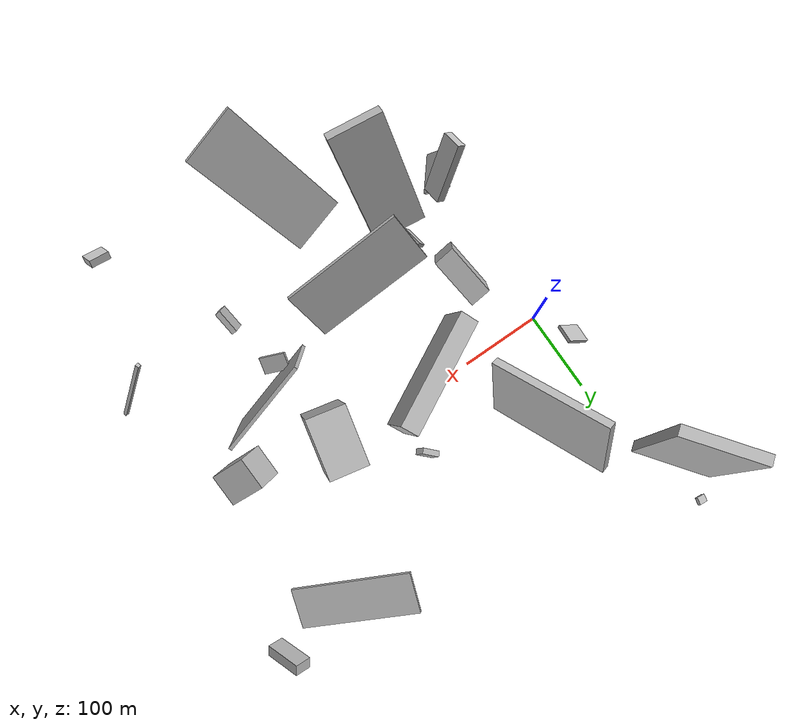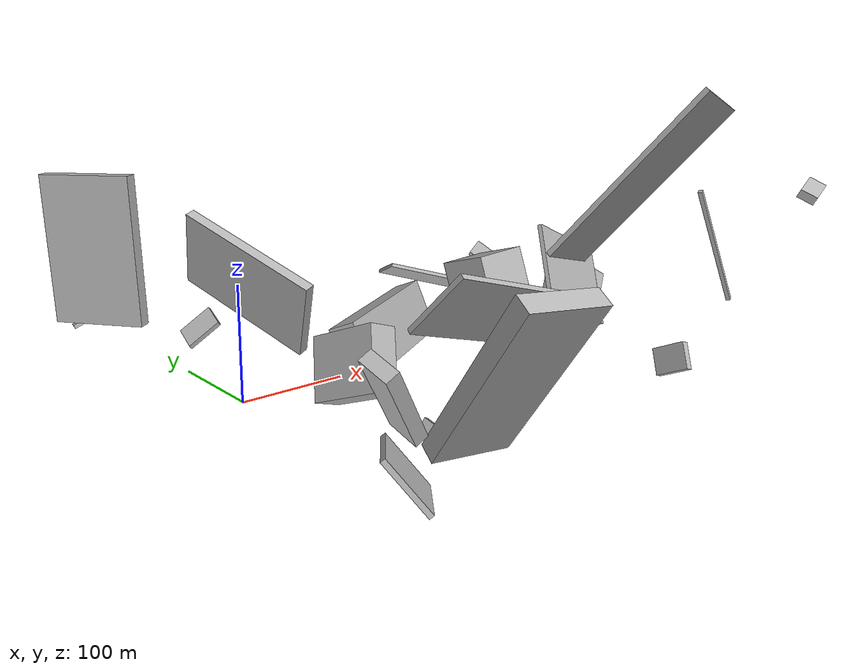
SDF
<sdf version="1.6">
 <world name="default">
  <scene>
   <sky><clouds><speed>12</speed></clouds></sky>
   <ambient>0.4 0.4 0.4 1</ambient>
   <background>0.7 0.7 0.7 1</background>
   <shadows>1</shadows>
  </scene>
  <gravity>0 0 -9.8066</gravity>
  <magnetic_field>6e-06 2.3e-05 -4.2e-05</magnetic_field>
  <physics default="0" name="default_physics" type="ode">
   <ode>
    <solver>
     <type>quick</type>
     <iters>10</iters>
     <sor>1.0</sor>
     <use_dynamic_moi_rescaling>0</use_dynamic_moi_rescaling>
    </solver>
    <constraints>
     <cfm>0</cfm>
     <erp>0.2</erp>
     <contact_max_correcting_vel>100</contact_max_correcting_vel>
     <contact_surface_layer>0.001</contact_surface_layer>
    </constraints>
   </ode>
   <max_step_size>0.004</max_step_size>
   <real_time_factor>1</real_time_factor>
   <real_time_update_rate>250</real_time_update_rate>
  </physics>
  <light name="sun" type="directional">
   <pose>0 0 10 0 0 0</pose>
   <diffuse>0.8 0.8 0.8 1</diffuse>
   <specular>0.2 0.2 0.2 1</specular>
   <attenuation>
    <range>1000</range>
    <constant>0.9</constant>
    <linear>0.01</linear>
    <quadratic>0.001</quadratic>
   </attenuation>
   <direction>-0.5 0.1 -0.9</direction>
  </light>
  <model name="building_1">
   <static>0</static>
   <pose>62.839233827772944 -153.04228810735873 12.451684264462628 -1.8829242019764436 -0.4514692021715699 -2.9047367522910554</pose>
   <link name="link">
    <gravity>0</gravity>
    <pose>0 0 15.5 0 0 0</pose>
    <collision name="collision"><geometry><box><size>4 12 31</size></box></geometry></collision>
    <visual name="visual">
     <cast_shadows>0</cast_shadows>
     <geometry><box><size>4 12 31</size></box></geometry>
     <material>
      <script>
       <uri>model://HANNAS_wall/materials/scripts</uri>
       <uri>model://HANNAS_wall/materials/textures</uri>
       <name>vrc/HANNAS_wall</name>
      </script>
     </material>
    </visual>
   </link>
  </model>
  <model name="building_2">
   <static>0</static>
   <pose>368.00192509435675 -75.38473883730751 57.43314589518648 1.2035156799046276 -0.3473966096288283 -1.219399422093482</pose>
   <link name="link">
    <gravity>0</gravity>
    <pose>0 0 59.5 0 0 0</pose>
    <collision name="collision"><geometry><box><size>4 79 119</size></box></geometry></collision>
    <visual name="visual">
     <cast_shadows>0</cast_shadows>
     <geometry><box><size>4 79 119</size></box></geometry>
     <material>
      <script>
       <uri>model://HANNAS_wall/materials/scripts</uri>
       <uri>model://HANNAS_wall/materials/textures</uri>
       <name>vrc/HANNAS_wall</name>
      </script>
     </material>
    </visual>
   </link>
  </model>
  <model name="building_3">
   <static>0</static>
   <pose>301.392088331918 183.25406884169308 43.75191244062317 -2.219113417056323 1.1408191853203888 -2.611128901923757</pose>
   <link name="link">
    <gravity>0</gravity>
    <pose>0 0 72.0 0 0 0</pose>
    <collision name="collision"><geometry><box><size>4 50 144</size></box></geometry></collision>
    <visual name="visual">
     <cast_shadows>0</cast_shadows>
     <geometry><box><size>4 50 144</size></box></geometry>
     <material>
      <script>
       <uri>model://HANNAS_wall/materials/scripts</uri>
       <uri>model://HANNAS_wall/materials/textures</uri>
       <name>vrc/HANNAS_wall</name>
      </script>
     </material>
    </visual>
   </link>
  </model>
  <model name="building_4">
   <static>0</static>
   <pose>428.37789871009613 -170.806851395012 104.5900710459006 1.7524988337655873 0.5030755693557591 -2.803222225496404</pose>
   <link name="link">
    <gravity>0</gravity>
    <pose>0 0 2.0 0 0 0</pose>
    <collision name="collision"><geometry><box><size>4 132 4</size></box></geometry></collision>
    <visual name="visual">
     <cast_shadows>0</cast_shadows>
     <geometry><box><size>4 132 4</size></box></geometry>
     <material>
      <script>
       <uri>model://HANNAS_wall/materials/scripts</uri>
       <uri>model://HANNAS_wall/materials/textures</uri>
       <name>vrc/HANNAS_wall</name>
      </script>
     </material>
    </visual>
   </link>
  </model>
  <model name="building_5">
   <static>0</static>
   <pose>290.19669501745057 -109.47993628808678 60.19440504105842 -0.49444055336118287 0.9587510402570696 -2.432906324665327</pose>
   <link name="link">
    <gravity>0</gravity>
    <pose>0 0 10.0 0 0 0</pose>
    <collision name="collision"><geometry><box><size>4 31 20</size></box></geometry></collision>
    <visual name="visual">
     <cast_shadows>0</cast_shadows>
     <geometry><box><size>4 31 20</size></box></geometry>
     <material>
      <script>
       <uri>model://HANNAS_wall/materials/scripts</uri>
       <uri>model://HANNAS_wall/materials/textures</uri>
       <name>vrc/HANNAS_wall</name>
      </script>
     </material>
    </visual>
   </link>
  </model>
  <model name="building_6">
   <static>0</static>
   <pose>139.86513227146867 -0.2110785418086607 34.20142943209419 -0.08628488997531293 -1.1950402468252979 2.1417478195816577</pose>
   <link name="link">
    <gravity>0</gravity>
    <pose>0 0 12.0 0 0 0</pose>
    <collision name="collision"><geometry><box><size>52 150 24</size></box></geometry></collision>
    <visual name="visual">
     <cast_shadows>0</cast_shadows>
     <geometry><box><size>52 150 24</size></box></geometry>
     <material>
      <script>
       <uri>model://HANNAS_wall/materials/scripts</uri>
       <uri>model://HANNAS_wall/materials/textures</uri>
       <name>vrc/HANNAS_wall</name>
      </script>
     </material>
    </visual>
   </link>
  </model>
  <model name="building_7">
   <static>0</static>
   <pose>-32.30882309108085 289.59740956541276 9.142443270312235 -0.42297141973070485 0.04873734735206447 1.3759343113161902</pose>
   <link name="link">
    <gravity>0</gravity>
    <pose>0 0 2.0 0 0 0</pose>
    <collision name="collision"><geometry><box><size>9 12 4</size></box></geometry></collision>
    <visual name="visual">
     <cast_shadows>0</cast_shadows>
     <geometry><box><size>9 12 4</size></box></geometry>
     <material>
      <script>
       <uri>model://HANNAS_wall/materials/scripts</uri>
       <uri>model://HANNAS_wall/materials/textures</uri>
       <name>vrc/HANNAS_wall</name>
      </script>
     </material>
    </visual>
   </link>
  </model>
  <model name="building_8">
   <static>0</static>
   <pose>309.38048096350263 -217.47500300705985 31.020746764120496 -2.53316796167378 -1.0354009670428976 0.9880767162809366</pose>
   <link name="link">
    <gravity>0</gravity>
    <pose>0 0 15.0 0 0 0</pose>
    <collision name="collision"><geometry><box><size>24 7 30</size></box></geometry></collision>
    <visual name="visual">
     <cast_shadows>0</cast_shadows>
     <geometry><box><size>24 7 30</size></box></geometry>
     <material>
      <script>
       <uri>model://HANNAS_wall/materials/scripts</uri>
       <uri>model://HANNAS_wall/materials/textures</uri>
       <name>vrc/HANNAS_wall</name>
      </script>
     </material>
    </visual>
   </link>
  </model>
  <model name="building_9">
   <static>0</static>
   <pose>70.72700174930529 -226.47932302121714 72.58908810746581 3.0283497444605008 -0.9709657423981538 -1.605973277845662</pose>
   <link name="link">
    <gravity>0</gravity>
    <pose>0 0 8.0 0 0 0</pose>
    <collision name="collision"><geometry><box><size>150 68 16</size></box></geometry></collision>
    <visual name="visual">
     <cast_shadows>0</cast_shadows>
     <geometry><box><size>150 68 16</size></box></geometry>
     <material>
      <script>
       <uri>model://HANNAS_wall/materials/scripts</uri>
       <uri>model://HANNAS_wall/materials/textures</uri>
       <name>vrc/HANNAS_wall</name>
      </script>
     </material>
    </visual>
   </link>
  </model>
  <model name="building_10">
   <static>0</static>
   <pose>149.1522249649333 -121.72942281445356 55.036878203754 0.3328050899190806 -0.6861682018925147 1.3503591306294398</pose>
   <link name="link">
    <gravity>0</gravity>
    <pose>0 0 33.5 0 0 0</pose>
    <collision name="collision"><geometry><box><size>5 150 67</size></box></geometry></collision>
    <visual name="visual">
     <cast_shadows>0</cast_shadows>
     <geometry><box><size>5 150 67</size></box></geometry>
     <material>
      <script>
       <uri>model://HANNAS_wall/materials/scripts</uri>
       <uri>model://HANNAS_wall/materials/textures</uri>
       <name>vrc/HANNAS_wall</name>
      </script>
     </material>
    </visual>
   </link>
  </model>
  <model name="building_11">
   <static>0</static>
   <pose>-3.7881457176387627 190.07078415126196 99.44190445294194 1.5742036518125768 0.047775269855235385 -2.4955480925410605</pose>
   <link name="link">
    <gravity>0</gravity>
    <pose>0 0 47.5 0 0 0</pose>
    <collision name="collision"><geometry><box><size>13 150 95</size></box></geometry></collision>
    <visual name="visual">
     <cast_shadows>0</cast_shadows>
     <geometry><box><size>13 150 95</size></box></geometry>
     <material>
      <script>
       <uri>model://HANNAS_wall/materials/scripts</uri>
       <uri>model://HANNAS_wall/materials/textures</uri>
       <name>vrc/HANNAS_wall</name>
      </script>
     </material>
    </visual>
   </link>
  </model>
  <model name="building_12">
   <static>0</static>
   <pose>258.0281688595415 -5.135418676173534 51.324115031845054 -1.4238148652878555 -0.25967115568993177 -1.7987437161118256</pose>
   <link name="link">
    <gravity>0</gravity>
    <pose>0 0 23.5 0 0 0</pose>
    <collision name="collision"><geometry><box><size>73 74 47</size></box></geometry></collision>
    <visual name="visual">
     <cast_shadows>0</cast_shadows>
     <geometry><box><size>73 74 47</size></box></geometry>
     <material>
      <script>
       <uri>model://HANNAS_wall/materials/scripts</uri>
       <uri>model://HANNAS_wall/materials/textures</uri>
       <name>vrc/HANNAS_wall</name>
      </script>
     </material>
    </visual>
   </link>
  </model>
  <model name="building_13">
   <static>0</static>
   <pose>54.87304861249335 -118.71944345533834 56.14709975078191 1.9453051845692046 -0.3118924202091221 -3.074110743840015</pose>
   <link name="link">
    <gravity>0</gravity>
    <pose>0 0 32.5 0 0 0</pose>
    <collision name="collision"><geometry><box><size>26 53 65</size></box></geometry></collision>
    <visual name="visual">
     <cast_shadows>0</cast_shadows>
     <geometry><box><size>26 53 65</size></box></geometry>
     <material>
      <script>
       <uri>model://HANNAS_wall/materials/scripts</uri>
       <uri>model://HANNAS_wall/materials/textures</uri>
       <name>vrc/HANNAS_wall</name>
      </script>
     </material>
    </visual>
   </link>
  </model>
  <model name="building_14">
   <static>0</static>
   <pose>72.08024141050102 107.58850593757276 75.17463719137258 2.268984403346423 -1.037344025071136 -1.9764145493116816</pose>
   <link name="link">
    <gravity>0</gravity>
    <pose>0 0 5.0 0 0 0</pose>
    <collision name="collision"><geometry><box><size>85 150 10</size></box></geometry></collision>
    <visual name="visual">
     <cast_shadows>0</cast_shadows>
     <geometry><box><size>85 150 10</size></box></geometry>
     <material>
      <script>
       <uri>model://HANNAS_wall/materials/scripts</uri>
       <uri>model://HANNAS_wall/materials/textures</uri>
       <name>vrc/HANNAS_wall</name>
      </script>
     </material>
    </visual>
   </link>
  </model>
  <model name="building_15">
   <static>0</static>
   <pose>205.57650481615815 60.69179737086061 34.785713570944395 -0.14383344134834025 0.7245529693002789 2.3900367023302693</pose>
   <link name="link">
    <gravity>0</gravity>
    <pose>0 0 6.0 0 0 0</pose>
    <collision name="collision"><geometry><box><size>25 7 12</size></box></geometry></collision>
    <visual name="visual">
     <cast_shadows>0</cast_shadows>
     <geometry><box><size>25 7 12</size></box></geometry>
     <material>
      <script>
       <uri>model://HANNAS_wall/materials/scripts</uri>
       <uri>model://HANNAS_wall/materials/textures</uri>
       <name>vrc/HANNAS_wall</name>
      </script>
     </material>
    </visual>
   </link>
  </model>
  <model name="building_16">
   <static>0</static>
   <pose>376.87160033583433 -36.542470231641275 33.66691427230856 -0.5079988653424604 -0.24058216974634072 -1.5652914021831374</pose>
   <link name="link">
    <gravity>0</gravity>
    <pose>0 0 19.0 0 0 0</pose>
    <collision name="collision"><geometry><box><size>39 47 38</size></box></geometry></collision>
    <visual name="visual">
     <cast_shadows>0</cast_shadows>
     <geometry><box><size>39 47 38</size></box></geometry>
     <material>
      <script>
       <uri>model://HANNAS_wall/materials/scripts</uri>
       <uri>model://HANNAS_wall/materials/textures</uri>
       <name>vrc/HANNAS_wall</name>
      </script>
     </material>
    </visual>
   </link>
  </model>
  <model name="building_17">
   <static>0</static>
   <pose>-18.253270098705315 -207.4290661034473 36.69280441869023 -3.0142428851828944 0.690646839817523 2.541317768975224</pose>
   <link name="link">
    <gravity>0</gravity>
    <pose>0 0 23.0 0 0 0</pose>
    <collision name="collision"><geometry><box><size>4 50 46</size></box></geometry></collision>
    <visual name="visual">
     <cast_shadows>0</cast_shadows>
     <geometry><box><size>4 50 46</size></box></geometry>
     <material>
      <script>
       <uri>model://HANNAS_wall/materials/scripts</uri>
       <uri>model://HANNAS_wall/materials/textures</uri>
       <name>vrc/HANNAS_wall</name>
      </script>
     </material>
    </visual>
   </link>
  </model>
  <model name="building_18">
   <static>0</static>
   <pose>449.78730663376217 162.18781107002852 32.529090924091356 0.5773020107371007 -0.5818463864938643 2.123760125774573</pose>
   <link name="link">
    <gravity>0</gravity>
    <pose>0 0 9.5 0 0 0</pose>
    <collision name="collision"><geometry><box><size>47 13 19</size></box></geometry></collision>
    <visual name="visual">
     <cast_shadows>0</cast_shadows>
     <geometry><box><size>47 13 19</size></box></geometry>
     <material>
      <script>
       <uri>model://HANNAS_wall/materials/scripts</uri>
       <uri>model://HANNAS_wall/materials/textures</uri>
       <name>vrc/HANNAS_wall</name>
      </script>
     </material>
    </visual>
   </link>
  </model>
  <model name="building_19">
   <static>0</static>
   <pose>377.53315616316763 -279.26424743875276 177.78855430567407 2.0465813186176716 0.45658819798679645 -1.2145975697041338</pose>
   <link name="link">
    <gravity>0</gravity>
    <pose>0 0 10.5 0 0 0</pose>
    <collision name="collision"><geometry><box><size>14 8 21</size></box></geometry></collision>
    <visual name="visual">
     <cast_shadows>0</cast_shadows>
     <geometry><box><size>14 8 21</size></box></geometry>
     <material>
      <script>
       <uri>model://HANNAS_wall/materials/scripts</uri>
       <uri>model://HANNAS_wall/materials/textures</uri>
       <name>vrc/HANNAS_wall</name>
      </script>
     </material>
    </visual>
   </link>
  </model>
  <model name="building_20">
   <static>0</static>
   <pose>163.50077777058155 -198.6597345888963 132.53224714191413 -0.6782196078202721 -0.21395380912896592 -2.900452794415923</pose>
   <link name="link">
    <gravity>0</gravity>
    <pose>0 0 75.0 0 0 0</pose>
    <collision name="collision"><geometry><box><size>63 4 150</size></box></geometry></collision>
    <visual name="visual">
     <cast_shadows>0</cast_shadows>
     <geometry><box><size>63 4 150</size></box></geometry>
     <material>
      <script>
       <uri>model://HANNAS_wall/materials/scripts</uri>
       <uri>model://HANNAS_wall/materials/textures</uri>
       <name>vrc/HANNAS_wall</name>
      </script>
     </material>
    </visual>
   </link>
  </model>
  <model name="building_21">
   <static>0</static>
   <pose>-8.119034256005566 -200.33196225086604 59.366042157413325 -0.5191091997284135 -0.8918534140001803 -2.673823262290721</pose>
   <link name="link">
    <gravity>0</gravity>
    <pose>0 0 5.5 0 0 0</pose>
    <collision name="collision"><geometry><box><size>76 27 11</size></box></geometry></collision>
    <visual name="visual">
     <cast_shadows>0</cast_shadows>
     <geometry><box><size>76 27 11</size></box></geometry>
     <material>
      <script>
       <uri>model://HANNAS_wall/materials/scripts</uri>
       <uri>model://HANNAS_wall/materials/textures</uri>
       <name>vrc/HANNAS_wall</name>
      </script>
     </material>
    </visual>
   </link>
  </model>
  <model name="building_22">
   <static>0</static>
   <pose>-23.87794021660862 50.66036856319093 47.019023174816574 0.49476573465449114 0.8013078811118298 0.23420939923212525</pose>
   <link name="link">
    <gravity>0</gravity>
    <pose>0 0 15.5 0 0 0</pose>
    <collision name="collision"><geometry><box><size>4 24 31</size></box></geometry></collision>
    <visual name="visual">
     <cast_shadows>0</cast_shadows>
     <geometry><box><size>4 24 31</size></box></geometry>
     <material>
      <script>
       <uri>model://HANNAS_wall/materials/scripts</uri>
       <uri>model://HANNAS_wall/materials/textures</uri>
       <name>vrc/HANNAS_wall</name>
      </script>
     </material>
    </visual>
   </link>
  </model>
 </world>
</sdf>
